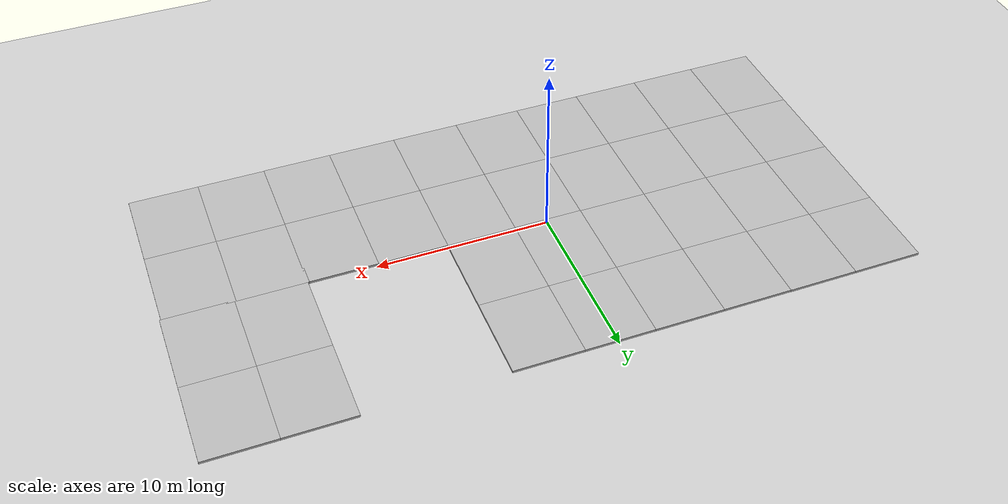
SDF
<sdf version="1.6">
 <world name="default">
  <light name="sun" type="directional">
   <pose>0 0 10 0 -0 0</pose>
   <diffuse>0.8 0.8 0.8 1</diffuse>
   <specular>0.1 0.1 0.1 1</specular>
   <attenuation>
    <range>1000</range>
    <constant>0.9</constant>
    <linear>0.01</linear>
    <quadratic>0.001</quadratic>
   </attenuation>
   <direction>-0.5 0.5 -1</direction>
  </light>
  <model name="ground_plane">
   <static>true</static>
   <link name="link">
    <collision name="collision">
     <geometry><plane><normal>0 0 1</normal><size>100 100</size></plane></geometry>
    </collision>
    <visual name="visual">
     <geometry><plane><normal>0 0 1</normal><size>100 100</size></plane></geometry>
     <material>
      <ambient>0.8 0.8 0.8 1</ambient>
      <diffuse>0.8 0.8 0.8 1</diffuse>
      <specular>0.8 0.8 0.8 1</specular>
     </material>
    </visual>
   </link>
  </model>
  <model name="mud_box">
   <static>1</static>
   <link name="link">
    <collision name="collision"><geometry><box><size>8 10 0.2</size></box></geometry></collision>
    <visual name="visual_1">
     <pose>-2 2.5 0 0 -0 0</pose>
     <cast_shadows>0</cast_shadows>
     <geometry><box><size>4 5 0.2</size></box></geometry>
     <material>
      <script>
       <uri>model://mud_box/materials/scripts</uri>
       <uri>model://mud_box/materials/textures</uri>
       <name>vrc/mud</name>
      </script>
     </material>
    </visual>
    <visual name="visual_2">
     <pose>2 2.5 0 0 -0 0</pose>
     <cast_shadows>0</cast_shadows>
     <geometry><box><size>4 5 0.2</size></box></geometry>
     <material>
      <script>
       <uri>model://mud_box/materials/scripts</uri>
       <uri>model://mud_box/materials/textures</uri>
       <name>vrc/mud</name>
      </script>
     </material>
    </visual>
    <visual name="visual_3">
     <pose>2 -2.5 0 0 -0 0</pose>
     <cast_shadows>0</cast_shadows>
     <geometry><box><size>4 5 0.2</size></box></geometry>
     <material>
      <script>
       <uri>model://mud_box/materials/scripts</uri>
       <uri>model://mud_box/materials/textures</uri>
       <name>vrc/mud</name>
      </script>
     </material>
    </visual>
    <visual name="visual_4">
     <pose>-2 -2.5 0 0 -0 0</pose>
     <cast_shadows>0</cast_shadows>
     <geometry><box><size>4 5 0.2</size></box></geometry>
     <material>
      <script>
       <uri>model://mud_box/materials/scripts</uri>
       <uri>model://mud_box/materials/textures</uri>
       <name>vrc/mud</name>
      </script>
     </material>
    </visual>
   </link>
   <pose>-6.12765 4.83622 0 0 -0 0</pose>
  </model>
  <model name="mud_box_0">
   <static>1</static>
   <link name="link">
    <collision name="collision"><geometry><box><size>8 10 0.2</size></box></geometry></collision>
    <visual name="visual_1">
     <pose>-2 2.5 0 0 -0 0</pose>
     <cast_shadows>0</cast_shadows>
     <geometry><box><size>4 5 0.2</size></box></geometry>
     <material>
      <script>
       <uri>model://mud_box/materials/scripts</uri>
       <uri>model://mud_box/materials/textures</uri>
       <name>vrc/mud</name>
      </script>
     </material>
    </visual>
    <visual name="visual_2">
     <pose>2 2.5 0 0 -0 0</pose>
     <cast_shadows>0</cast_shadows>
     <geometry><box><size>4 5 0.2</size></box></geometry>
     <material>
      <script>
       <uri>model://mud_box/materials/scripts</uri>
       <uri>model://mud_box/materials/textures</uri>
       <name>vrc/mud</name>
      </script>
     </material>
    </visual>
    <visual name="visual_3">
     <pose>2 -2.5 0 0 -0 0</pose>
     <cast_shadows>0</cast_shadows>
     <geometry><box><size>4 5 0.2</size></box></geometry>
     <material>
      <script>
       <uri>model://mud_box/materials/scripts</uri>
       <uri>model://mud_box/materials/textures</uri>
       <name>vrc/mud</name>
      </script>
     </material>
    </visual>
    <visual name="visual_4">
     <pose>-2 -2.5 0 0 -0 0</pose>
     <cast_shadows>0</cast_shadows>
     <geometry><box><size>4 5 0.2</size></box></geometry>
     <material>
      <script>
       <uri>model://mud_box/materials/scripts</uri>
       <uri>model://mud_box/materials/textures</uri>
       <name>vrc/mud</name>
      </script>
     </material>
    </visual>
   </link>
   <pose>1.86767 4.83104 0 0 -0 0</pose>
  </model>
  <model name="mud_box_1">
   <static>1</static>
   <link name="link">
    <collision name="collision"><geometry><box><size>8 10 0.2</size></box></geometry></collision>
    <visual name="visual_1">
     <pose>-2 2.5 0 0 -0 0</pose>
     <cast_shadows>0</cast_shadows>
     <geometry><box><size>4 5 0.2</size></box></geometry>
     <material>
      <script>
       <uri>model://mud_box/materials/scripts</uri>
       <uri>model://mud_box/materials/textures</uri>
       <name>vrc/mud</name>
      </script>
     </material>
    </visual>
    <visual name="visual_2">
     <pose>2 2.5 0 0 -0 0</pose>
     <cast_shadows>0</cast_shadows>
     <geometry><box><size>4 5 0.2</size></box></geometry>
     <material>
      <script>
       <uri>model://mud_box/materials/scripts</uri>
       <uri>model://mud_box/materials/textures</uri>
       <name>vrc/mud</name>
      </script>
     </material>
    </visual>
    <visual name="visual_3">
     <pose>2 -2.5 0 0 -0 0</pose>
     <cast_shadows>0</cast_shadows>
     <geometry><box><size>4 5 0.2</size></box></geometry>
     <material>
      <script>
       <uri>model://mud_box/materials/scripts</uri>
       <uri>model://mud_box/materials/textures</uri>
       <name>vrc/mud</name>
      </script>
     </material>
    </visual>
    <visual name="visual_4">
     <pose>-2 -2.5 0 0 -0 0</pose>
     <cast_shadows>0</cast_shadows>
     <geometry><box><size>4 5 0.2</size></box></geometry>
     <material>
      <script>
       <uri>model://mud_box/materials/scripts</uri>
       <uri>model://mud_box/materials/textures</uri>
       <name>vrc/mud</name>
      </script>
     </material>
    </visual>
   </link>
   <pose>-6.12792 -5.13998 0 0 -0 0</pose>
  </model>
  <model name="mud_box_2">
   <static>1</static>
   <link name="link">
    <collision name="collision"><geometry><box><size>8 10 0.2</size></box></geometry></collision>
    <visual name="visual_1">
     <pose>-2 2.5 0 0 -0 0</pose>
     <cast_shadows>0</cast_shadows>
     <geometry><box><size>4 5 0.2</size></box></geometry>
     <material>
      <script>
       <uri>model://mud_box/materials/scripts</uri>
       <uri>model://mud_box/materials/textures</uri>
       <name>vrc/mud</name>
      </script>
     </material>
    </visual>
    <visual name="visual_2">
     <pose>2 2.5 0 0 -0 0</pose>
     <cast_shadows>0</cast_shadows>
     <geometry><box><size>4 5 0.2</size></box></geometry>
     <material>
      <script>
       <uri>model://mud_box/materials/scripts</uri>
       <uri>model://mud_box/materials/textures</uri>
       <name>vrc/mud</name>
      </script>
     </material>
    </visual>
    <visual name="visual_3">
     <pose>2 -2.5 0 0 -0 0</pose>
     <cast_shadows>0</cast_shadows>
     <geometry><box><size>4 5 0.2</size></box></geometry>
     <material>
      <script>
       <uri>model://mud_box/materials/scripts</uri>
       <uri>model://mud_box/materials/textures</uri>
       <name>vrc/mud</name>
      </script>
     </material>
    </visual>
    <visual name="visual_4">
     <pose>-2 -2.5 0 0 -0 0</pose>
     <cast_shadows>0</cast_shadows>
     <geometry><box><size>4 5 0.2</size></box></geometry>
     <material>
      <script>
       <uri>model://mud_box/materials/scripts</uri>
       <uri>model://mud_box/materials/textures</uri>
       <name>vrc/mud</name>
      </script>
     </material>
    </visual>
   </link>
   <pose>1.85975 -5.14192 0 0 -0 0</pose>
  </model>
  <model name="mud_box_0_clone">
   <static>1</static>
   <link name="link">
    <collision name="collision"><geometry><box><size>8 10 0.2</size></box></geometry></collision>
    <visual name="visual_1">
     <pose>-2 2.5 0 0 -0 0</pose>
     <cast_shadows>0</cast_shadows>
     <geometry><box><size>4 5 0.2</size></box></geometry>
     <material>
      <script>
       <uri>model://mud_box/materials/scripts</uri>
       <uri>model://mud_box/materials/textures</uri>
       <name>vrc/mud</name>
      </script>
     </material>
    </visual>
    <visual name="visual_2">
     <pose>2 2.5 0 0 -0 0</pose>
     <cast_shadows>0</cast_shadows>
     <geometry><box><size>4 5 0.2</size></box></geometry>
     <material>
      <script>
       <uri>model://mud_box/materials/scripts</uri>
       <uri>model://mud_box/materials/textures</uri>
       <name>vrc/mud</name>
      </script>
     </material>
    </visual>
    <visual name="visual_3">
     <pose>2 -2.5 0 0 -0 0</pose>
     <cast_shadows>0</cast_shadows>
     <geometry><box><size>4 5 0.2</size></box></geometry>
     <material>
      <script>
       <uri>model://mud_box/materials/scripts</uri>
       <uri>model://mud_box/materials/textures</uri>
       <name>vrc/mud</name>
      </script>
     </material>
    </visual>
    <visual name="visual_4">
     <pose>-2 -2.5 0 0 -0 0</pose>
     <cast_shadows>0</cast_shadows>
     <geometry><box><size>4 5 0.2</size></box></geometry>
     <material>
      <script>
       <uri>model://mud_box/materials/scripts</uri>
       <uri>model://mud_box/materials/textures</uri>
       <name>vrc/mud</name>
      </script>
     </material>
    </visual>
   </link>
   <pose>9.85757 -5.14216 0 0 -0 0</pose>
  </model>
  <model name="mud_box_0_clone_clone">
   <static>1</static>
   <link name="link">
    <collision name="collision"><geometry><box><size>8 10 0.2</size></box></geometry></collision>
    <visual name="visual_1">
     <pose>-2 2.5 0 0 -0 0</pose>
     <cast_shadows>0</cast_shadows>
     <geometry><box><size>4 5 0.2</size></box></geometry>
     <material>
      <script>
       <uri>model://mud_box/materials/scripts</uri>
       <uri>model://mud_box/materials/textures</uri>
       <name>vrc/mud</name>
      </script>
     </material>
    </visual>
    <visual name="visual_2">
     <pose>2 2.5 0 0 -0 0</pose>
     <cast_shadows>0</cast_shadows>
     <geometry><box><size>4 5 0.2</size></box></geometry>
     <material>
      <script>
       <uri>model://mud_box/materials/scripts</uri>
       <uri>model://mud_box/materials/textures</uri>
       <name>vrc/mud</name>
      </script>
     </material>
    </visual>
    <visual name="visual_3">
     <pose>2 -2.5 0 0 -0 0</pose>
     <cast_shadows>0</cast_shadows>
     <geometry><box><size>4 5 0.2</size></box></geometry>
     <material>
      <script>
       <uri>model://mud_box/materials/scripts</uri>
       <uri>model://mud_box/materials/textures</uri>
       <name>vrc/mud</name>
      </script>
     </material>
    </visual>
    <visual name="visual_4">
     <pose>-2 -2.5 0 0 -0 0</pose>
     <cast_shadows>0</cast_shadows>
     <geometry><box><size>4 5 0.2</size></box></geometry>
     <material>
      <script>
       <uri>model://mud_box/materials/scripts</uri>
       <uri>model://mud_box/materials/textures</uri>
       <name>vrc/mud</name>
      </script>
     </material>
    </visual>
   </link>
   <pose>17.7661 -5.12084 0 0 -0 0</pose>
  </model>
  <model name="mud_box_0_clone_clone_0">
   <static>1</static>
   <link name="link">
    <collision name="collision"><geometry><box><size>8 10 0.2</size></box></geometry></collision>
    <visual name="visual_1">
     <pose>-2 2.5 0 0 -0 0</pose>
     <cast_shadows>0</cast_shadows>
     <geometry><box><size>4 5 0.2</size></box></geometry>
     <material>
      <script>
       <uri>model://mud_box/materials/scripts</uri>
       <uri>model://mud_box/materials/textures</uri>
       <name>vrc/mud</name>
      </script>
     </material>
    </visual>
    <visual name="visual_2">
     <pose>2 2.5 0 0 -0 0</pose>
     <cast_shadows>0</cast_shadows>
     <geometry><box><size>4 5 0.2</size></box></geometry>
     <material>
      <script>
       <uri>model://mud_box/materials/scripts</uri>
       <uri>model://mud_box/materials/textures</uri>
       <name>vrc/mud</name>
      </script>
     </material>
    </visual>
    <visual name="visual_3">
     <pose>2 -2.5 0 0 -0 0</pose>
     <cast_shadows>0</cast_shadows>
     <geometry><box><size>4 5 0.2</size></box></geometry>
     <material>
      <script>
       <uri>model://mud_box/materials/scripts</uri>
       <uri>model://mud_box/materials/textures</uri>
       <name>vrc/mud</name>
      </script>
     </material>
    </visual>
    <visual name="visual_4">
     <pose>-2 -2.5 0 0 -0 0</pose>
     <cast_shadows>0</cast_shadows>
     <geometry><box><size>4 5 0.2</size></box></geometry>
     <material>
      <script>
       <uri>model://mud_box/materials/scripts</uri>
       <uri>model://mud_box/materials/textures</uri>
       <name>vrc/mud</name>
      </script>
     </material>
    </visual>
   </link>
   <pose>17.8432 4.79546 0 0 -0 0</pose>
  </model>
  <model name="mud_box_0_clone_clone_1">
   <static>1</static>
   <link name="link">
    <collision name="collision"><geometry><box><size>8 10 0.2</size></box></geometry></collision>
    <visual name="visual_1">
     <pose>-2 2.5 0 0 -0 0</pose>
     <cast_shadows>0</cast_shadows>
     <geometry><box><size>4 5 0.2</size></box></geometry>
     <material>
      <script>
       <uri>model://mud_box/materials/scripts</uri>
       <uri>model://mud_box/materials/textures</uri>
       <name>vrc/mud</name>
      </script>
     </material>
    </visual>
    <visual name="visual_2">
     <pose>2 2.5 0 0 -0 0</pose>
     <cast_shadows>0</cast_shadows>
     <geometry><box><size>4 5 0.2</size></box></geometry>
     <material>
      <script>
       <uri>model://mud_box/materials/scripts</uri>
       <uri>model://mud_box/materials/textures</uri>
       <name>vrc/mud</name>
      </script>
     </material>
    </visual>
    <visual name="visual_3">
     <pose>2 -2.5 0 0 -0 0</pose>
     <cast_shadows>0</cast_shadows>
     <geometry><box><size>4 5 0.2</size></box></geometry>
     <material>
      <script>
       <uri>model://mud_box/materials/scripts</uri>
       <uri>model://mud_box/materials/textures</uri>
       <name>vrc/mud</name>
      </script>
     </material>
    </visual>
    <visual name="visual_4">
     <pose>-2 -2.5 0 0 -0 0</pose>
     <cast_shadows>0</cast_shadows>
     <geometry><box><size>4 5 0.2</size></box></geometry>
     <material>
      <script>
       <uri>model://mud_box/materials/scripts</uri>
       <uri>model://mud_box/materials/textures</uri>
       <name>vrc/mud</name>
      </script>
     </material>
    </visual>
   </link>
   <pose>-14.1276 -5.15209 0 0 -0 0</pose>
  </model>
  <model name="mud_box_0_clone_clone_2">
   <static>1</static>
   <link name="link">
    <collision name="collision"><geometry><box><size>8 10 0.2</size></box></geometry></collision>
    <visual name="visual_1">
     <pose>-2 2.5 0 0 -0 0</pose>
     <cast_shadows>0</cast_shadows>
     <geometry><box><size>4 5 0.2</size></box></geometry>
     <material>
      <script>
       <uri>model://mud_box/materials/scripts</uri>
       <uri>model://mud_box/materials/textures</uri>
       <name>vrc/mud</name>
      </script>
     </material>
    </visual>
    <visual name="visual_2">
     <pose>2 2.5 0 0 -0 0</pose>
     <cast_shadows>0</cast_shadows>
     <geometry><box><size>4 5 0.2</size></box></geometry>
     <material>
      <script>
       <uri>model://mud_box/materials/scripts</uri>
       <uri>model://mud_box/materials/textures</uri>
       <name>vrc/mud</name>
      </script>
     </material>
    </visual>
    <visual name="visual_3">
     <pose>2 -2.5 0 0 -0 0</pose>
     <cast_shadows>0</cast_shadows>
     <geometry><box><size>4 5 0.2</size></box></geometry>
     <material>
      <script>
       <uri>model://mud_box/materials/scripts</uri>
       <uri>model://mud_box/materials/textures</uri>
       <name>vrc/mud</name>
      </script>
     </material>
    </visual>
    <visual name="visual_4">
     <pose>-2 -2.5 0 0 -0 0</pose>
     <cast_shadows>0</cast_shadows>
     <geometry><box><size>4 5 0.2</size></box></geometry>
     <material>
      <script>
       <uri>model://mud_box/materials/scripts</uri>
       <uri>model://mud_box/materials/textures</uri>
       <name>vrc/mud</name>
      </script>
     </material>
    </visual>
   </link>
   <pose>-14.1258 4.84756 0 0 -0 0</pose>
  </model>
 </world>
</sdf>
